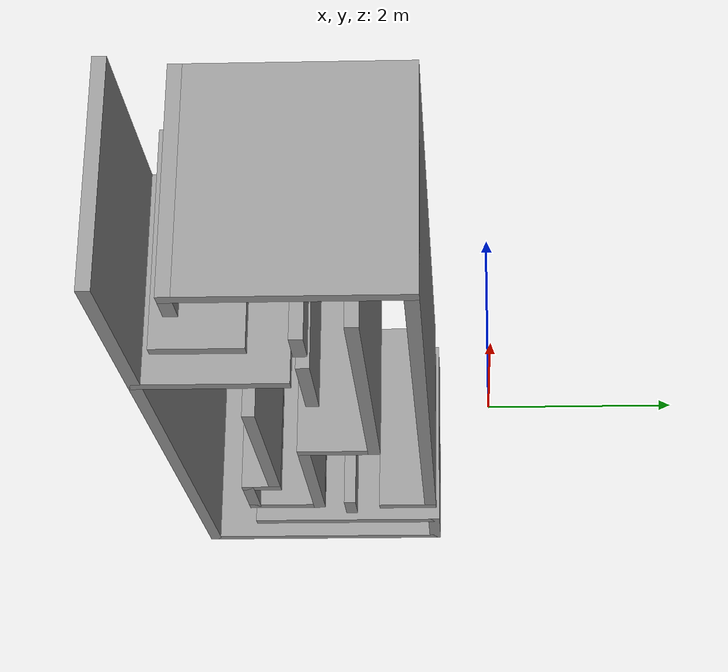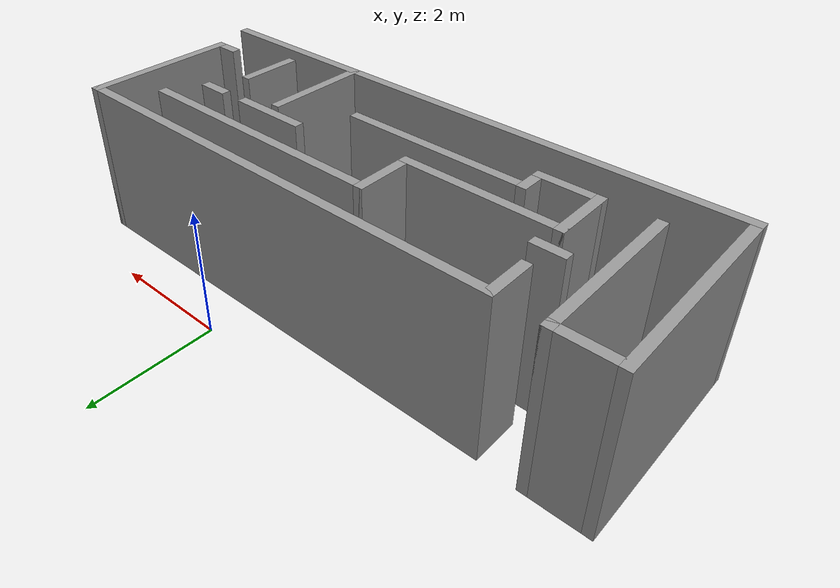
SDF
<?xml version='1.0'?>
<sdf version='1.7'>
  <model name='maze.world'>
    <pose>-1.13 -1.9475 0 0 -0 0</pose>
    <link name='Wall_0'>
      <collision name='Wall_0_Collision'>
        <geometry>
          <box>
            <size>9.25 0.15 2.5</size>
          </box>
        </geometry>
        <pose>0 0 1.25 0 -0 0</pose>
      </collision>
      <visual name='Wall_0_Visual'>
        <pose>0 0 1.25 0 -0 0</pose>
        <geometry>
          <box>
            <size>9.25 0.15 2.5</size>
          </box>
        </geometry>
        <material>
          <script>
            <uri>file://media/materials/scripts/gazebo.material</uri>
            <name>Gazebo/Grey</name>
          </script>
          <ambient>1 1 1 1</ambient>
        </material>
        <meta>
          <layer>0</layer>
        </meta>
      </visual>
      <pose>0 -1.8725 0 0 -0 0</pose>
    </link>
    <link name='Wall_10'>
      <collision name='Wall_10_Collision'>
        <geometry>
          <box>
            <size>0.5 0.15 2.5</size>
          </box>
        </geometry>
        <pose>0 0 1.25 0 -0 0</pose>
      </collision>
      <visual name='Wall_10_Visual'>
        <pose>0 0 1.25 0 -0 0</pose>
        <geometry>
          <box>
            <size>0.5 0.15 2.5</size>
          </box>
        </geometry>
        <material>
          <script>
            <uri>file://media/materials/scripts/gazebo.material</uri>
            <name>Gazebo/Grey</name>
          </script>
          <ambient>1 1 1 1</ambient>
        </material>
        <meta>
          <layer>0</layer>
        </meta>
      </visual>
      <pose>4.205 -1.1525 0 0 -0 3.14159</pose>
    </link>
    <link name='Wall_12'>
      <collision name='Wall_12_Collision'>
        <geometry>
          <box>
            <size>1 0.15 2.5</size>
          </box>
        </geometry>
        <pose>0 0 1.25 0 -0 0</pose>
      </collision>
      <visual name='Wall_12_Visual'>
        <pose>0 0 1.25 0 -0 0</pose>
        <geometry>
          <box>
            <size>1 0.15 2.5</size>
          </box>
        </geometry>
        <material>
          <script>
            <uri>file://media/materials/scripts/gazebo.material</uri>
            <name>Gazebo/Grey</name>
          </script>
          <ambient>1 1 1 1</ambient>
        </material>
        <meta>
          <layer>0</layer>
        </meta>
      </visual>
      <pose>-2.91 -0.6975 0 0 -0 1.5708</pose>
    </link>
    <link name='Wall_13'>
      <collision name='Wall_13_Collision'>
        <geometry>
          <box>
            <size>2.5 0.15 2.5</size>
          </box>
        </geometry>
        <pose>0 0 1.25 0 -0 0</pose>
      </collision>
      <visual name='Wall_13_Visual'>
        <pose>0 0 1.25 0 -0 0</pose>
        <geometry>
          <box>
            <size>2.5 0.15 2.5</size>
          </box>
        </geometry>
        <material>
          <script>
            <uri>file://media/materials/scripts/gazebo.material</uri>
            <name>Gazebo/Grey</name>
          </script>
          <ambient>1 1 1 1</ambient>
        </material>
        <meta>
          <layer>0</layer>
        </meta>
      </visual>
      <pose>-1.735 -0.2725 0 0 -0 0</pose>
    </link>
    <link name='Wall_16'>
      <collision name='Wall_16_Collision'>
        <geometry>
          <box>
            <size>1 0.15 2.5</size>
          </box>
        </geometry>
        <pose>0 0 1.25 0 -0 0</pose>
      </collision>
      <visual name='Wall_16_Visual'>
        <pose>0 0 1.25 0 -0 0</pose>
        <geometry>
          <box>
            <size>1 0.15 2.5</size>
          </box>
        </geometry>
        <material>
          <script>
            <uri>file://media/materials/scripts/gazebo.material</uri>
            <name>Gazebo/Grey</name>
          </script>
          <ambient>1 1 1 1</ambient>
        </material>
        <meta>
          <layer>0</layer>
        </meta>
      </visual>
      <pose>-2.485 -1.1225 0 0 -0 0</pose>
    </link>
    <link name='Wall_2'>
      <collision name='Wall_2_Collision'>
        <geometry>
          <box>
            <size>3.25 0.15 2.5</size>
          </box>
        </geometry>
        <pose>0 0 1.25 0 -0 0</pose>
      </collision>
      <visual name='Wall_2_Visual'>
        <pose>0 0 1.25 0 -0 0</pose>
        <geometry>
          <box>
            <size>3.25 0.15 2.5</size>
          </box>
        </geometry>
        <material>
          <script>
            <uri>file://media/materials/scripts/gazebo.material</uri>
            <name>Gazebo/Grey</name>
          </script>
          <ambient>1 1 1 1</ambient>
        </material>
        <meta>
          <layer>0</layer>
        </meta>
      </visual>
      <pose>-4.55 -0.3225 0 0 -0 1.5708</pose>
    </link>
    <link name='Wall_20'>
      <collision name='Wall_20_Collision'>
        <geometry>
          <box>
            <size>0.5 0.15 2.5</size>
          </box>
        </geometry>
        <pose>0 0 1.25 0 -0 0</pose>
      </collision>
      <visual name='Wall_20_Visual'>
        <pose>0 0 1.25 0 -0 0</pose>
        <geometry>
          <box>
            <size>0.5 0.15 2.5</size>
          </box>
        </geometry>
        <material>
          <script>
            <uri>file://media/materials/scripts/gazebo.material</uri>
            <name>Gazebo/Grey</name>
          </script>
          <ambient>1 1 1 1</ambient>
        </material>
        <meta>
          <layer>0</layer>
        </meta>
      </visual>
      <pose>-2.06 -0.9475 0 0 -0 1.5708</pose>
    </link>
    <link name='Wall_21'>
      <collision name='Wall_21_Collision'>
        <geometry>
          <box>
            <size>3 0.15 2.5</size>
          </box>
        </geometry>
        <pose>0 0 1.25 0 -0 0</pose>
      </collision>
      <visual name='Wall_21_Visual'>
        <pose>0 0 1.25 0 -0 0</pose>
        <geometry>
          <box>
            <size>3 0.15 2.5</size>
          </box>
        </geometry>
        <material>
          <script>
            <uri>file://media/materials/scripts/gazebo.material</uri>
            <name>Gazebo/Grey</name>
          </script>
          <ambient>1 1 1 1</ambient>
        </material>
        <meta>
          <layer>0</layer>
        </meta>
      </visual>
      <pose>-0.635 -0.7725 0 0 -0 0</pose>
    </link>
    <link name='Wall_23'>
      <collision name='Wall_23_Collision'>
        <geometry>
          <box>
            <size>1.75 0.15 2.5</size>
          </box>
        </geometry>
        <pose>0 0 1.25 0 -0 0</pose>
      </collision>
      <visual name='Wall_23_Visual'>
        <pose>0 0 1.25 0 -0 0</pose>
        <geometry>
          <box>
            <size>1.75 0.15 2.5</size>
          </box>
        </geometry>
        <material>
          <script>
            <uri>file://media/materials/scripts/gazebo.material</uri>
            <name>Gazebo/Grey</name>
          </script>
          <ambient>1 1 1 1</ambient>
        </material>
        <meta>
          <layer>0</layer>
        </meta>
      </visual>
      <pose>1.91 -1.0625 0 0 -0 1.5708</pose>
    </link>
    <link name='Wall_25'>
      <collision name='Wall_25_Collision'>
        <geometry>
          <box>
            <size>1 0.15 2.5</size>
          </box>
        </geometry>
        <pose>0 0 1.25 0 -0 0</pose>
      </collision>
      <visual name='Wall_25_Visual'>
        <pose>0 0 1.25 0 -0 0</pose>
        <geometry>
          <box>
            <size>1 0.15 2.5</size>
          </box>
        </geometry>
        <material>
          <script>
            <uri>file://media/materials/scripts/gazebo.material</uri>
            <name>Gazebo/Grey</name>
          </script>
          <ambient>1 1 1 1</ambient>
        </material>
        <meta>
          <layer>0</layer>
        </meta>
      </visual>
      <pose>2.99 -1.0375 0 0 -0 1.5708</pose>
    </link>
    <link name='Wall_27'>
      <collision name='Wall_27_Collision'>
        <geometry>
          <box>
            <size>1 0.15 2.5</size>
          </box>
        </geometry>
        <pose>0 0 1.25 0 -0 0</pose>
      </collision>
      <visual name='Wall_27_Visual'>
        <pose>0 0 1.25 0 -0 0</pose>
        <geometry>
          <box>
            <size>1 0.15 2.5</size>
          </box>
        </geometry>
        <material>
          <script>
            <uri>file://media/materials/scripts/gazebo.material</uri>
            <name>Gazebo/Grey</name>
          </script>
          <ambient>1 1 1 1</ambient>
        </material>
        <meta>
          <layer>0</layer>
        </meta>
      </visual>
      <pose>-0.56 0.1525 0 0 -0 1.5708</pose>
    </link>
    <link name='Wall_28'>
      <collision name='Wall_28_Collision'>
        <geometry>
          <box>
            <size>4.25 0.15 2.5</size>
          </box>
        </geometry>
        <pose>0 0 1.25 0 -0 0</pose>
      </collision>
      <visual name='Wall_28_Visual'>
        <pose>0 0 1.25 0 -0 0</pose>
        <geometry>
          <box>
            <size>4.25 0.15 2.5</size>
          </box>
        </geometry>
        <material>
          <script>
            <uri>file://media/materials/scripts/gazebo.material</uri>
            <name>Gazebo/Grey</name>
          </script>
          <ambient>1 1 1 1</ambient>
        </material>
        <meta>
          <layer>0</layer>
        </meta>
      </visual>
      <pose>1.49 0.5775 0 0 -0 0</pose>
    </link>
    <link name='Wall_30'>
      <collision name='Wall_30_Collision'>
        <geometry>
          <box>
            <size>0.5 0.15 2.5</size>
          </box>
        </geometry>
        <pose>0 0 1.25 0 -0 0</pose>
      </collision>
      <visual name='Wall_30_Visual'>
        <pose>0 0 1.25 0 -0 0</pose>
        <geometry>
          <box>
            <size>0.5 0.15 2.5</size>
          </box>
        </geometry>
        <material>
          <script>
            <uri>file://media/materials/scripts/gazebo.material</uri>
            <name>Gazebo/Grey</name>
          </script>
          <ambient>1 1 1 1</ambient>
        </material>
        <meta>
          <layer>0</layer>
        </meta>
      </visual>
      <pose>3.045 -0.0025 0 0 -0 0</pose>
    </link>
    <link name='Wall_32'>
      <collision name='Wall_32_Collision'>
        <geometry>
          <box>
            <size>0.5 0.15 2.5</size>
          </box>
        </geometry>
        <pose>0 0 1.25 0 -0 0</pose>
      </collision>
      <visual name='Wall_32_Visual'>
        <pose>0 0 1.25 0 -0 0</pose>
        <geometry>
          <box>
            <size>0.5 0.15 2.5</size>
          </box>
        </geometry>
        <material>
          <script>
            <uri>file://media/materials/scripts/gazebo.material</uri>
            <name>Gazebo/Grey</name>
          </script>
          <ambient>1 1 1 1</ambient>
        </material>
        <meta>
          <layer>0</layer>
        </meta>
      </visual>
      <pose>-3.015 0.1375 0 0 -0 0</pose>
    </link>
    <link name='Wall_34'>
      <collision name='Wall_34_Collision'>
        <geometry>
          <box>
            <size>1.25 0.15 2.5</size>
          </box>
        </geometry>
        <pose>0 0 1.25 0 -0 0</pose>
      </collision>
      <visual name='Wall_34_Visual'>
        <pose>0 0 1.25 0 -0 0</pose>
        <geometry>
          <box>
            <size>1.25 0.15 2.5</size>
          </box>
        </geometry>
        <material>
          <script>
            <uri>file://media/materials/scripts/gazebo.material</uri>
            <name>Gazebo/Grey</name>
          </script>
          <ambient>1 1 1 1</ambient>
        </material>
        <meta>
          <layer>0</layer>
        </meta>
      </visual>
      <pose>1.82 -0.0125 0 0 -0 3.14159</pose>
    </link>
    <link name='Wall_4'>
      <collision name='Wall_4_Collision'>
        <geometry>
          <box>
            <size>1 0.15 2.5</size>
          </box>
        </geometry>
        <pose>0 0 1.25 0 -0 0</pose>
      </collision>
      <visual name='Wall_4_Visual'>
        <pose>0 0 1.25 0 -0 0</pose>
        <geometry>
          <box>
            <size>1 0.15 2.5</size>
          </box>
        </geometry>
        <material>
          <script>
            <uri>file://media/materials/scripts/gazebo.material</uri>
            <name>Gazebo/Grey</name>
          </script>
          <ambient>1 1 1 1</ambient>
        </material>
        <meta>
          <layer>0</layer>
        </meta>
      </visual>
      <pose>-4.125 1.2275 0 0 -0 0</pose>
    </link>
    <link name='Wall_5'>
      <collision name='Wall_5_Collision'>
        <geometry>
          <box>
            <size>2.5 0.15 2.5</size>
          </box>
        </geometry>
        <pose>0 0 1.25 0 -0 0</pose>
      </collision>
      <visual name='Wall_5_Visual'>
        <pose>0 0 1.25 0 -0 0</pose>
        <geometry>
          <box>
            <size>2.5 0.15 2.5</size>
          </box>
        </geometry>
        <material>
          <script>
            <uri>file://media/materials/scripts/gazebo.material</uri>
            <name>Gazebo/Grey</name>
          </script>
          <ambient>1 1 1 1</ambient>
        </material>
        <meta>
          <layer>0</layer>
        </meta>
      </visual>
      <pose>-3.7 0.0525 0 0 -0 -1.5708</pose>
    </link>
    <link name='Wall_7'>
      <collision name='Wall_7_Collision'>
        <geometry>
          <box>
            <size>0.75 0.15 2.5</size>
          </box>
        </geometry>
        <pose>0 0 1.25 0 -0 0</pose>
      </collision>
      <visual name='Wall_7_Visual'>
        <pose>0 0 1.25 0 -0 0</pose>
        <geometry>
          <box>
            <size>0.75 0.15 2.5</size>
          </box>
        </geometry>
        <material>
          <script>
            <uri>file://media/materials/scripts/gazebo.material</uri>
            <name>Gazebo/Grey</name>
          </script>
          <ambient>1 1 1 1</ambient>
        </material>
        <meta>
          <layer>0</layer>
        </meta>
      </visual>
      <pose>-2.97 0.8975 0 0 -0 1.5708</pose>
    </link>
    <link name='Wall_8'>
      <collision name='Wall_8_Collision'>
        <geometry>
          <box>
            <size>7.5 0.15 2.5</size>
          </box>
        </geometry>
        <pose>0 0 1.25 0 -0 0</pose>
      </collision>
      <visual name='Wall_8_Visual'>
        <pose>0 0 1.25 0 -0 0</pose>
        <geometry>
          <box>
            <size>7.5 0.15 2.5</size>
          </box>
        </geometry>
        <material>
          <script>
            <uri>file://media/materials/scripts/gazebo.material</uri>
            <name>Gazebo/Grey</name>
          </script>
          <ambient>1 1 1 1</ambient>
        </material>
        <meta>
          <layer>0</layer>
        </meta>
      </visual>
      <pose>0.705 1.1975 0 0 -0 0</pose>
    </link>
    <link name='Wall_9'>
      <collision name='Wall_9_Collision'>
        <geometry>
          <box>
            <size>2.5 0.15 2.5</size>
          </box>
        </geometry>
        <pose>0 0 1.25 0 -0 0</pose>
      </collision>
      <visual name='Wall_9_Visual'>
        <pose>0 0 1.25 0 -0 0</pose>
        <geometry>
          <box>
            <size>2.5 0.15 2.5</size>
          </box>
        </geometry>
        <material>
          <script>
            <uri>file://media/materials/scripts/gazebo.material</uri>
            <name>Gazebo/Grey</name>
          </script>
          <ambient>1 1 1 1</ambient>
        </material>
        <meta>
          <layer>0</layer>
        </meta>
      </visual>
      <pose>4.38 0.0225 0 0 -0 -1.5708</pose>
    </link>
    <static>1</static>
  </model>
</sdf>
